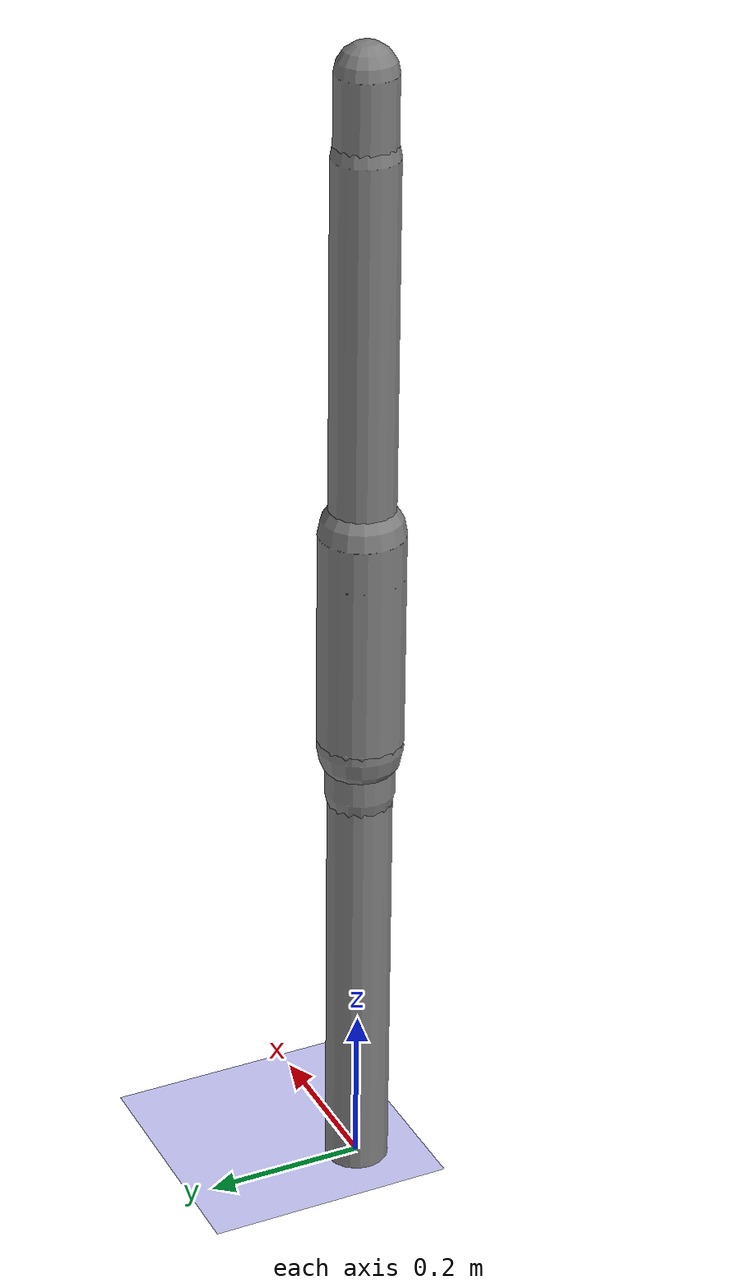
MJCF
<?xml version='1.0' encoding='UTF-8'?>
<mujoco model="robot_model">
  <worldbody>
    <light name="light" pos="0 -3 10" dir="0 0.5 -1" diffuse=".8 .8 .8" specular="0.1 0.1 0.1"/>
    <geom name="floor" type="plane" size="10.0 10.0 0.1" pos="0 0 0" rgba="0.8 0.8 1 1" contype="2" conaffinity="1"/>
    <body name="limb0" pos="0 0 0">
      <geom type="capsule" fromto="0 0 0 0 0 0.6" size="0.04" density="883.9320185200462" contype="1" conaffinity="2"/>
      <site type="sphere" size="0.01" name="limb0_site0" pos="0 0 0.3879865204841603"/>
      <site type="sphere" size="0.01" name="limb0_site1" pos="0 0 0.43124431412549075"/>
      <freejoint name="limb0_root"/>
      <body name="limb1" pos="0 0 0.3879865204841603">
        <geom type="capsule" fromto="0 0 0 0 0 0.2639757366326131" size="0.03303782304059255" density="616.6153958948047" contype="1" conaffinity="2"/>
        <site type="sphere" size="0.01" name="limb1_site0" pos="0 0 0.20741445746053405"/>
        <site type="sphere" size="0.01" name="limb1_site1" pos="0 0 0.10105994540977413"/>
        <site type="sphere" size="0.01" name="limb1_site2" pos="0 0 0.14621385581581725"/>
        <body name="limb2" pos="0 0 0.20741445746053405">
          <geom type="capsule" fromto="0 0 0 0 0 0.2308883175355425" size="0.0526135099365978" density="745.4449559354061" contype="1" conaffinity="2"/>
          <site type="sphere" size="0.01" name="limb2_site0" pos="0 0 0.012183204894623443"/>
          <body name="limb3" pos="0 0 0.012183204894623443">
            <geom type="capsule" fromto="0 0 0 0 0 0.2718382711396347" size="0.052967933430587415" density="959.6445780864858" contype="1" conaffinity="2"/>
            <joint name="joint_limb2_limb3_0" type="hinge" axis="0 1 0" range="-53.51127969085405 53.51127969085405" damping="5.0"/>
          </body>
          <joint name="joint_limb1_limb2_0" type="hinge" axis="0 1 0" range="-78.8368751691934 78.8368751691934" damping="5.0"/>
        </body>
        <body name="limb4" pos="0 0 0.10105994540977413">
          <geom type="capsule" fromto="0 0 0 0 0 0.44824426173418674" size="0.03801391311606609" density="960.7622558157541" contype="1" conaffinity="2"/>
          <site type="sphere" size="0.01" name="limb4_site0" pos="0 0 0.44824426173418674"/>
          <site type="sphere" size="0.01" name="limb4_site1" pos="0 0 0.25942570694108286"/>
          <site type="sphere" size="0.01" name="limb4_site2" pos="0 0 0.39514419094865066"/>
          <body name="limb5" pos="0 0 0.44824426173418674">
            <geom type="capsule" fromto="0 0 0 0 0 0.4991908608857968" size="0.03725798275225197" density="946.7985008258047" contype="1" conaffinity="2"/>
            <joint name="joint_limb4_limb5_0" type="hinge" axis="0 1 0" range="-120.0 120.0" damping="5.0"/>
          </body>
          <body name="limb6" pos="0 0 0.25942570694108286">
            <geom type="capsule" fromto="0 0 0 0 0 0.2102868528065015" size="0.03451406520881031" density="566.487314585425" contype="1" conaffinity="2"/>
            <joint name="joint_limb4_limb6_0" type="hinge" axis="0 1 0" range="-104.94540138861841 104.94540138861841" damping="5.0"/>
          </body>
          <body name="limb7" pos="0 0 0.39514419094865066">
            <geom type="capsule" fromto="0 0 0 0 0 0.4558236432736898" size="0.040393786555888975" density="1054.6511241400187" contype="1" conaffinity="2"/>
            <joint name="joint_limb4_limb7_0" type="hinge" axis="1 0 0" range="-111.63535672944958 111.63535672944958" damping="5.0"/>
          </body>
          <joint name="joint_limb1_limb4_0" type="hinge" axis="0 1 0" range="-84.37282476408203 84.37282476408203" damping="5.0"/>
        </body>
        <body name="limb8" pos="0 0 0.14621385581581725">
          <geom type="capsule" fromto="0 0 0 0 0 0.25215086514996193" size="0.042933509923616706" density="424.6749137779462" contype="1" conaffinity="2"/>
          <joint name="joint_limb1_limb8_0" type="hinge" axis="0 0 1" range="-74.19033846047556 74.19033846047556" damping="5.0"/>
        </body>
        <joint name="joint_limb0_limb1_0" type="hinge" axis="0 1 0" range="-86.4588262857906 86.4588262857906" damping="5.0"/>
      </body>
      <body name="limb9" pos="0 0 0.43124431412549075">
        <geom type="capsule" fromto="0 0 0 0 0 0.30452645221964403" size="0.025785880078164375" density="1018.0304064374076" contype="1" conaffinity="2"/>
        <joint name="joint_limb0_limb9_0" type="hinge" axis="0 0 1" range="-35.12701677795169 35.12701677795169" damping="5.0"/>
      </body>
    </body>
  </worldbody>
  <actuator>
    <position name="position_actuator_joint_limb0_limb1_0" joint="joint_limb0_limb1_0" gear="1.3528196501497776" inheritrange="1" kp="10.0"/>
    <position name="position_actuator_joint_limb1_limb2_0" joint="joint_limb1_limb2_0" gear="1.320444813612617" inheritrange="1" kp="10.0"/>
    <position name="position_actuator_joint_limb2_limb3_0" joint="joint_limb2_limb3_0" gear="1.5090076720061971" inheritrange="1" kp="10.0"/>
    <position name="position_actuator_joint_limb1_limb4_0" joint="joint_limb1_limb4_0" gear="2.0" inheritrange="1" kp="10.0"/>
    <position name="position_actuator_joint_limb4_limb5_0" joint="joint_limb4_limb5_0" gear="1.818227126713069" inheritrange="1" kp="10.0"/>
    <position name="position_actuator_joint_limb4_limb6_0" joint="joint_limb4_limb6_0" gear="1.0887960667114218" inheritrange="1" kp="10.0"/>
    <position name="position_actuator_joint_limb4_limb7_0" joint="joint_limb4_limb7_0" gear="1.547309721313042" inheritrange="1" kp="10.0"/>
    <position name="position_actuator_joint_limb1_limb8_0" joint="joint_limb1_limb8_0" gear="1.1880155203111582" inheritrange="1" kp="10.0"/>
    <position name="position_actuator_joint_limb0_limb9_0" joint="joint_limb0_limb9_0" gear="0.9619473016810458" inheritrange="1" kp="10.0"/>
  </actuator>
</mujoco>
